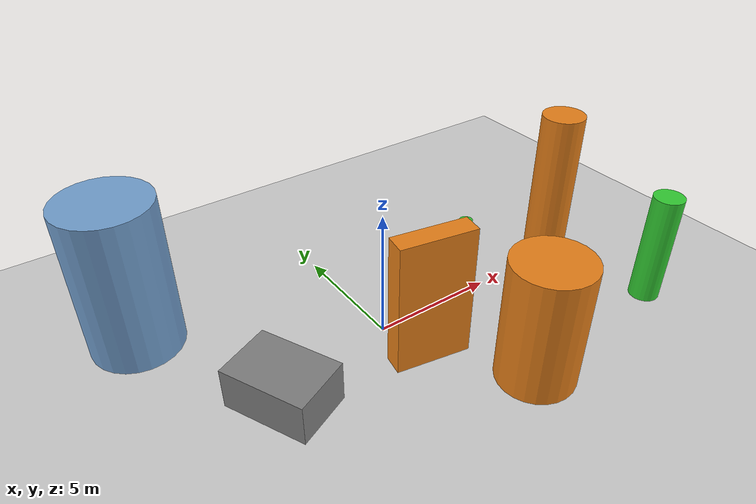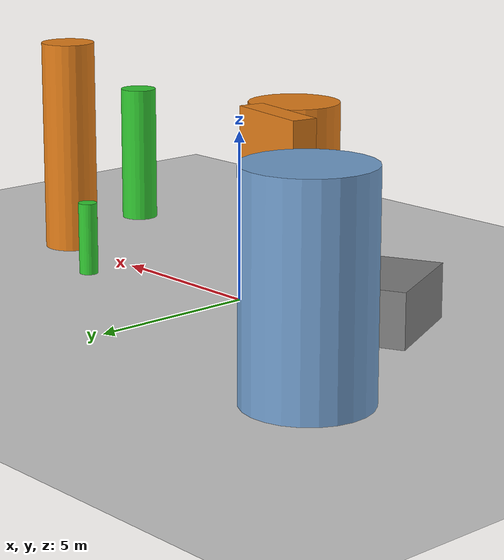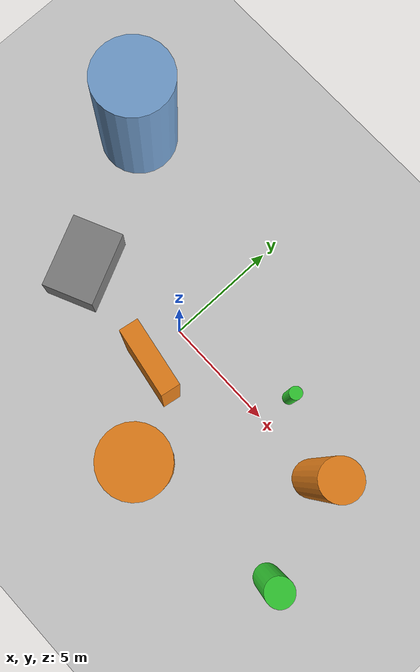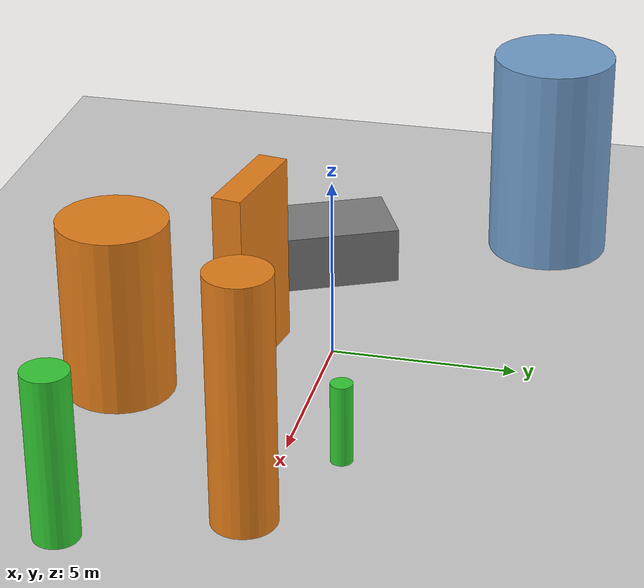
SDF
<?xml version='1.0'?>
<sdf version='1.6'>
  <world name='default'>
    <!-- Sun light -->
    <light name='sun' type='directional'>
      <cast_shadows>1</cast_shadows>
      <pose>0 0 10 0 0 0</pose>
      <diffuse>0.8 0.8 0.8 1</diffuse>
      <specular>0.2 0.2 0.2 1</specular>
      <attenuation>
        <range>1000</range>
        <constant>0.9</constant>
        <linear>0.01</linear>
        <quadratic>0.001</quadratic>
      </attenuation>
      <direction>-0.5 0.1 -0.9</direction>
    </light>

    <!-- Ground plane -->
    <model name='ground_plane'>
      <static>1</static>
      <link name='link'>
        <collision name='collision'>
          <geometry>
            <plane>
              <normal>0 0 1</normal>
              <size>100 100</size>
            </plane>
          </geometry>
          <surface>
            <contact>
              <collide_bitmask>65535</collide_bitmask>
              <ode/>
            </contact>
            <friction>
              <ode>
                <mu>100</mu>
                <mu2>50</mu2>
              </ode>
              <torsional><ode/></torsional>
            </friction>
            <bounce/>
          </surface>
          <max_contacts>10</max_contacts>
        </collision>
        <visual name='visual'>
          <cast_shadows>0</cast_shadows>
          <geometry>
            <plane>
              <normal>0 0 1</normal>
              <size>100 100</size>
            </plane>
          </geometry>
          <material>
            <script>
              <uri>file://media/materials/scripts/gazebo.material</uri>
              <n>Gazebo/Grey</n>
            </script>
          </material>
        </visual>
      </link>
    </model>

    <!-- Environment -->
    <magnetic_field>6e-06 2.3e-05 -4.2e-05</magnetic_field>
    <atmosphere type='adiabatic'/>
    <physics name='default_physics' default='0' type='ode'>
      <gravity>0 0 -9.8</gravity>
      <max_step_size>0.004</max_step_size>
      <real_time_factor>1</real_time_factor>
      <real_time_update_rate>250</real_time_update_rate>
    </physics>
    <scene>
      <ambient>0.4 0.4 0.4 1</ambient>
      <background>0.7 0.7 0.7 1</background>
      <shadows>1</shadows>
    </scene>
    <wind/>
    <spherical_coordinates>
      <surface_model>EARTH_WGS84</surface_model>
      <latitude_deg>0</latitude_deg>
      <longitude_deg>0</longitude_deg>
      <elevation>0</elevation>
      <heading_deg>0</heading_deg>
    </spherical_coordinates>

    <!-- ============ OBSTACLES (7) ============ -->
    <model name='obs_00'>
      <static>1</static>
      <link name='link'>
        <visual name='visual'>
          <geometry>
            <cylinder>
              <radius>0.2870</radius>
              <length>2.2086</length>
            </cylinder>
          </geometry>
          <material>
            <script>
              <n>Gazebo/Green</n>
              <uri>file://media/materials/scripts/gazebo.material</uri>
            </script>
            <ambient>0.2 0.8 0.2 1</ambient>
          </material>
        </visual>
        <collision name='collision'>
          <geometry>
            <cylinder>
              <radius>0.2870</radius>
              <length>2.2086</length>
            </cylinder>
          </geometry>
          <max_contacts>10</max_contacts>
          <surface>
            <contact><ode/></contact>
            <bounce/>
            <friction>
              <ode><mu>1</mu><mu2>1</mu2></ode>
              <torsional><ode/></torsional>
            </friction>
          </surface>
        </collision>
      </link>
      <pose>5.2617 1.4784 1.1043 0 0 0.4264</pose>
    </model>

    <model name='obs_01'>
      <static>1</static>
      <link name='link'>
        <visual name='visual'>
          <geometry>
            <box>
              <size>0.8073 2.8868 5.2276</size>
            </box>
          </geometry>
          <material>
            <script>
              <n>Gazebo/Orange</n>
              <uri>file://media/materials/scripts/gazebo.material</uri>
            </script>
            <ambient>0.9 0.5 0.1 1</ambient>
          </material>
        </visual>
        <collision name='collision'>
          <geometry>
            <box>
              <size>0.8073 2.8868 5.2276</size>
            </box>
          </geometry>
          <max_contacts>10</max_contacts>
          <surface>
            <contact><ode/></contact>
            <bounce/>
            <friction>
              <ode><mu>1</mu><mu2>1</mu2></ode>
              <torsional><ode/></torsional>
            </friction>
          </surface>
        </collision>
      </link>
      <pose>0.5892 -2.0393 2.6138 0 0 1.3984</pose>
    </model>

    <model name='obs_02'>
      <static>1</static>
      <link name='link'>
        <visual name='visual'>
          <geometry>
            <cylinder>
              <radius>1.4626</radius>
              <length>4.8500</length>
            </cylinder>
          </geometry>
          <material>
            <script>
              <n>Gazebo/Orange</n>
              <uri>file://media/materials/scripts/gazebo.material</uri>
            </script>
            <ambient>0.9 0.5 0.1 1</ambient>
          </material>
        </visual>
        <collision name='collision'>
          <geometry>
            <cylinder>
              <radius>1.4626</radius>
              <length>4.8500</length>
            </cylinder>
          </geometry>
          <max_contacts>10</max_contacts>
          <surface>
            <contact><ode/></contact>
            <bounce/>
            <friction>
              <ode><mu>1</mu><mu2>1</mu2></ode>
              <torsional><ode/></torsional>
            </friction>
          </surface>
        </collision>
      </link>
      <pose>2.9912 -5.0078 2.4250 0 0 2.0981</pose>
    </model>

    <model name='obs_03'>
      <static>1</static>
      <link name='link'>
        <visual name='visual'>
          <geometry>
            <cylinder>
              <radius>1.7250</radius>
              <length>5.9827</length>
            </cylinder>
          </geometry>
          <material>
            <script>
              <n>Gazebo/Blue</n>
              <uri>file://media/materials/scripts/gazebo.material</uri>
            </script>
            <ambient>0.447 0.624 0.812 1</ambient>
          </material>
        </visual>
        <collision name='collision'>
          <geometry>
            <cylinder>
              <radius>1.7250</radius>
              <length>5.9827</length>
            </cylinder>
          </geometry>
          <max_contacts>10</max_contacts>
          <surface>
            <contact><ode/></contact>
            <bounce/>
            <friction>
              <ode><mu>1</mu><mu2>1</mu2></ode>
              <torsional><ode/></torsional>
            </friction>
          </surface>
        </collision>
      </link>
      <pose>-7.7310 4.7135 2.9913 0 0 2.8002</pose>
    </model>

    <model name='obs_04'>
      <static>1</static>
      <link name='link'>
        <visual name='visual'>
          <geometry>
            <box>
              <size>3.2779 2.2806 1.6068</size>
            </box>
          </geometry>
          <material>
            <script>
              <n>Gazebo/Grey</n>
              <uri>file://media/materials/scripts/gazebo.material</uri>
            </script>
            <ambient>0.5 0.5 0.5 1</ambient>
          </material>
        </visual>
        <collision name='collision'>
          <geometry>
            <box>
              <size>3.2779 2.2806 1.6068</size>
            </box>
          </geometry>
          <max_contacts>10</max_contacts>
          <surface>
            <contact><ode/></contact>
            <bounce/>
            <friction>
              <ode><mu>1</mu><mu2>1</mu2></ode>
              <torsional><ode/></torsional>
            </friction>
          </surface>
        </collision>
      </link>
      <pose>-4.7942 -1.0745 0.8034 0 0 2.0034</pose>
    </model>

    <model name='obs_05'>
      <static>1</static>
      <link name='link'>
        <visual name='visual'>
          <geometry>
            <cylinder>
              <radius>0.5880</radius>
              <length>4.4582</length>
            </cylinder>
          </geometry>
          <material>
            <script>
              <n>Gazebo/Green</n>
              <uri>file://media/materials/scripts/gazebo.material</uri>
            </script>
            <ambient>0.2 0.8 0.2 1</ambient>
          </material>
        </visual>
        <collision name='collision'>
          <geometry>
            <cylinder>
              <radius>0.5880</radius>
              <length>4.4582</length>
            </cylinder>
          </geometry>
          <max_contacts>10</max_contacts>
          <surface>
            <contact><ode/></contact>
            <bounce/>
            <friction>
              <ode><mu>1</mu><mu2>1</mu2></ode>
              <torsional><ode/></torsional>
            </friction>
          </surface>
        </collision>
      </link>
      <pose>9.9273 -4.2885 2.2291 0 0 2.4883</pose>
    </model>

    <model name='obs_06'>
      <static>1</static>
      <link name='link'>
        <visual name='visual'>
          <geometry>
            <cylinder>
              <radius>0.8325</radius>
              <length>6.6256</length>
            </cylinder>
          </geometry>
          <material>
            <script>
              <n>Gazebo/Orange</n>
              <uri>file://media/materials/scripts/gazebo.material</uri>
            </script>
            <ambient>0.9 0.5 0.1 1</ambient>
          </material>
        </visual>
        <collision name='collision'>
          <geometry>
            <cylinder>
              <radius>0.8325</radius>
              <length>6.6256</length>
            </cylinder>
          </geometry>
          <max_contacts>10</max_contacts>
          <surface>
            <contact><ode/></contact>
            <bounce/>
            <friction>
              <ode><mu>1</mu><mu2>1</mu2></ode>
              <torsional><ode/></torsional>
            </friction>
          </surface>
        </collision>
      </link>
      <pose>8.3296 -0.1760 3.3128 0 0 1.7405</pose>
    </model>

    <!-- GUI camera -->
    <gui fullscreen='0'>
      <camera name='user_camera'>
        <pose>-15 0 18 0 0.85 0.15</pose>
        <view_controller>orbit</view_controller>
        <projection_type>perspective</projection_type>
      </camera>
    </gui>
  </world>
</sdf>
